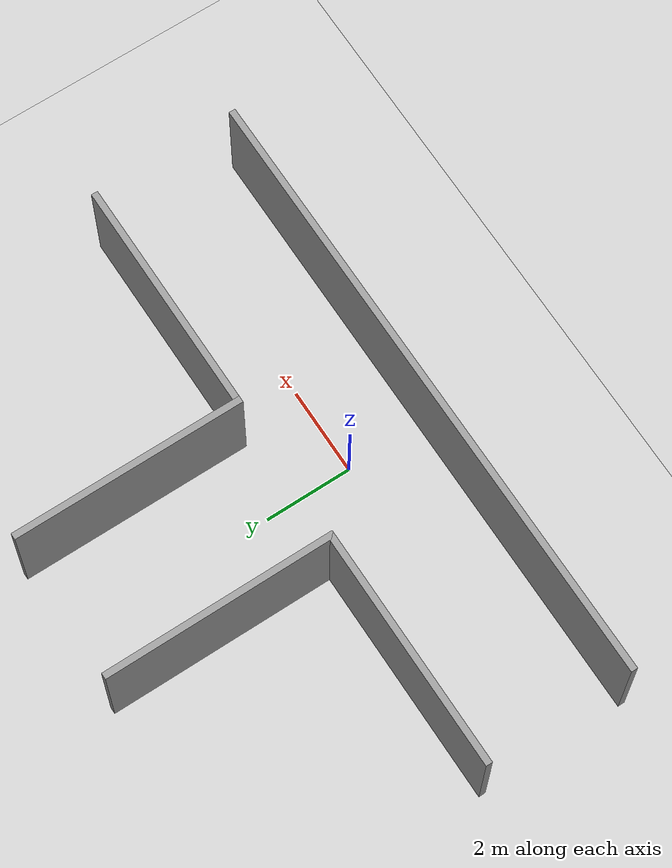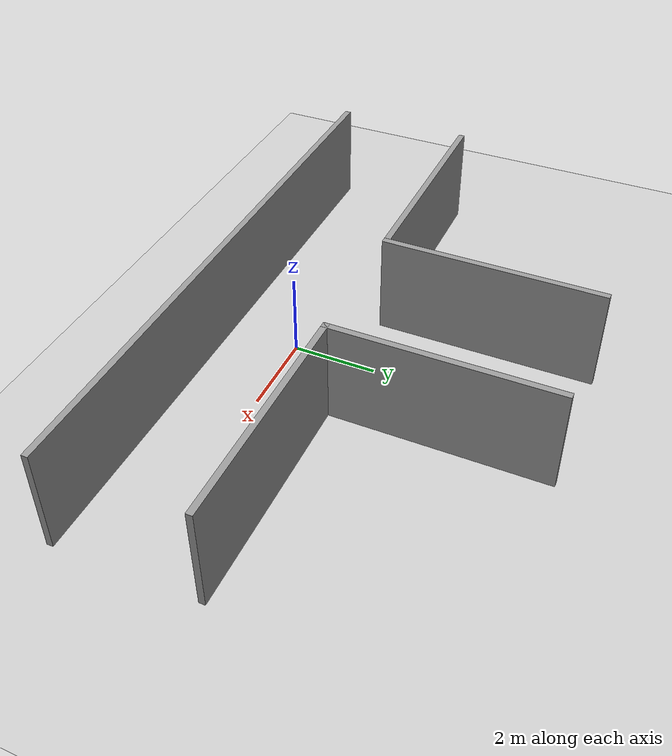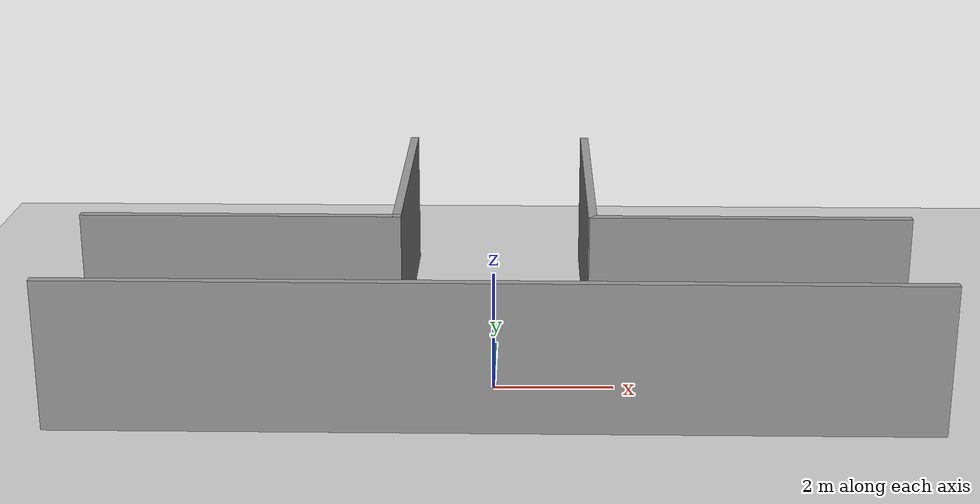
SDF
<sdf version="1.6">
 <world name="default">
  <light name="sun" type="directional">
   <pose>0 0 10 0 -0 0</pose>
   <diffuse>0.8 0.8 0.8 1</diffuse>
   <specular>0.2 0.2 0.2 1</specular>
   <attenuation>
    <range>1000</range>
    <constant>0.9</constant>
    <linear>0.01</linear>
    <quadratic>0.001</quadratic>
   </attenuation>
   <direction>-0.5 0.1 -0.9</direction>
  </light>
  <model name="ground_plane">
   <static>1</static>
   <link name="link">
    <collision name="collision">
     <geometry><plane><normal>0 0 1</normal><size>100 100</size></plane></geometry>
     <surface><friction><ode><mu>100</mu><mu2>50</mu2></ode></friction></surface>
    </collision>
    <visual name="visual">
     <cast_shadows>0</cast_shadows>
     <geometry><plane><normal>0 0 1</normal><size>100 100</size></plane></geometry>
     <material>
      <script><uri>file://media/materials/scripts/gazebo.material</uri><name>Gazebo/Grey</name></script>
     </material>
    </visual>
   </link>
  </model>
  <gravity>0 0 -9.8</gravity>
  <magnetic_field>6e-06 2.3e-05 -4.2e-05</magnetic_field>
  <atmosphere type="adiabatic"/>
  <physics name="default_physics" default="0" type="ode">
   <max_step_size>0.001</max_step_size>
   <real_time_factor>1</real_time_factor>
   <real_time_update_rate>1000</real_time_update_rate>
  </physics>
  <scene><ambient>0.4 0.4 0.4 1</ambient><background>0.7 0.7 0.7 1</background><shadows>1</shadows></scene>
  <audio><device>default</device></audio>
  <spherical_coordinates>
   <surface_model>EARTH_WGS84</surface_model>
   <latitude_deg>0</latitude_deg>
   <longitude_deg>0</longitude_deg>
   <elevation>0</elevation>
   <heading_deg>0</heading_deg>
  </spherical_coordinates>
  <model name="3-coridor">
   <pose>0.012129 2.43456 0 0 -0 0</pose>
   <link name="Wall_10">
    <collision name="Wall_10_Collision">
     <geometry><box><size>5.5 0.15 2.5</size></box></geometry>
     <pose>0 0 1.25 0 -0 0</pose>
    </collision>
    <visual name="Wall_10_Visual">
     <pose>0 0 1.25 0 -0 0</pose>
     <geometry><box><size>5.5 0.15 2.5</size></box></geometry>
     <material>
      <script><uri>file://media/materials/scripts/gazebo.material</uri><name>Gazebo/Grey</name></script>
      <ambient>1 1 1 1</ambient>
     </material>
     <meta><layer>0</layer></meta>
    </visual>
    <pose>-4.375 -0.875 0 0 -0 3.14159</pose>
   </link>
   <link name="Wall_12">
    <collision name="Wall_12_Collision">
     <geometry><box><size>14.25 0.15 2.5</size></box></geometry>
     <pose>0 0 1.25 0 -0 0</pose>
    </collision>
    <visual name="Wall_12_Visual">
     <pose>0 0 1.25 0 -0 0</pose>
     <geometry><box><size>14.25 0.15 2.5</size></box></geometry>
     <material>
      <script><uri>file://media/materials/scripts/gazebo.material</uri><name>Gazebo/Grey</name></script>
      <ambient>1 1 1 1</ambient>
     </material>
     <meta><layer>0</layer></meta>
    </visual>
    <pose>-0 -4.225 0 0 -0 0</pose>
   </link>
   <link name="Wall_2">
    <collision name="Wall_2_Collision">
     <geometry><box><size>5.25 0.15 2.5</size></box></geometry>
     <pose>0 0 1.25 0 -0 0</pose>
    </collision>
    <visual name="Wall_2_Visual">
     <pose>0 0 1.25 0 -0 0</pose>
     <geometry><box><size>5.25 0.15 2.5</size></box></geometry>
     <material>
      <script><uri>file://media/materials/scripts/gazebo.material</uri><name>Gazebo/Grey</name></script>
      <ambient>1 1 1 1</ambient>
     </material>
     <meta><layer>0</layer></meta>
    </visual>
    <pose>-1.7 1.675 0 0 -0 1.5708</pose>
   </link>
   <link name="Wall_5">
    <collision name="Wall_5_Collision">
     <geometry><box><size>5.25 0.15 2.5</size></box></geometry>
     <pose>0 0 1.25 0 -0 0</pose>
    </collision>
    <visual name="Wall_5_Visual">
     <pose>0 0 1.25 0 -0 0</pose>
     <geometry><box><size>5.25 0.15 2.5</size></box></geometry>
     <material>
      <script><uri>file://media/materials/scripts/gazebo.material</uri><name>Gazebo/Grey</name></script>
      <ambient>1 1 1 1</ambient>
     </material>
     <meta><layer>0</layer></meta>
    </visual>
    <pose>1.65 1.675 0 0 -0 -1.5708</pose>
   </link>
   <link name="Wall_6">
    <collision name="Wall_6_Collision">
     <geometry><box><size>5.5 0.15 2.5</size></box></geometry>
     <pose>0 0 1.25 0 -0 0</pose>
    </collision>
    <visual name="Wall_6_Visual">
     <pose>0 0 1.25 0 -0 0</pose>
     <geometry><box><size>5.5 0.15 2.5</size></box></geometry>
     <material>
      <script><uri>file://media/materials/scripts/gazebo.material</uri><name>Gazebo/Grey</name></script>
      <ambient>1 1 1 1</ambient>
     </material>
     <meta><layer>0</layer></meta>
    </visual>
    <pose>4.325 -0.875 0 0 -0 0</pose>
   </link>
   <static>1</static>
  </model>
 </world>
</sdf>
